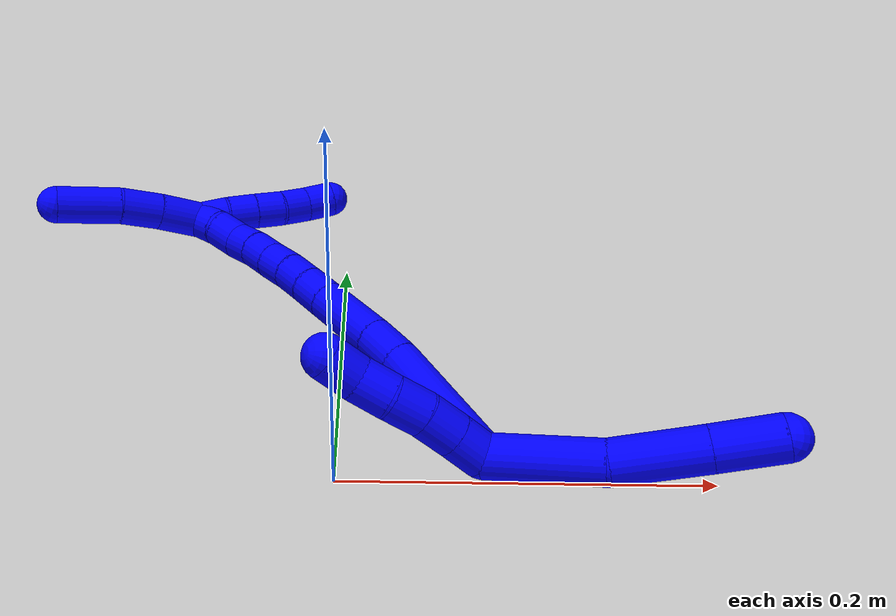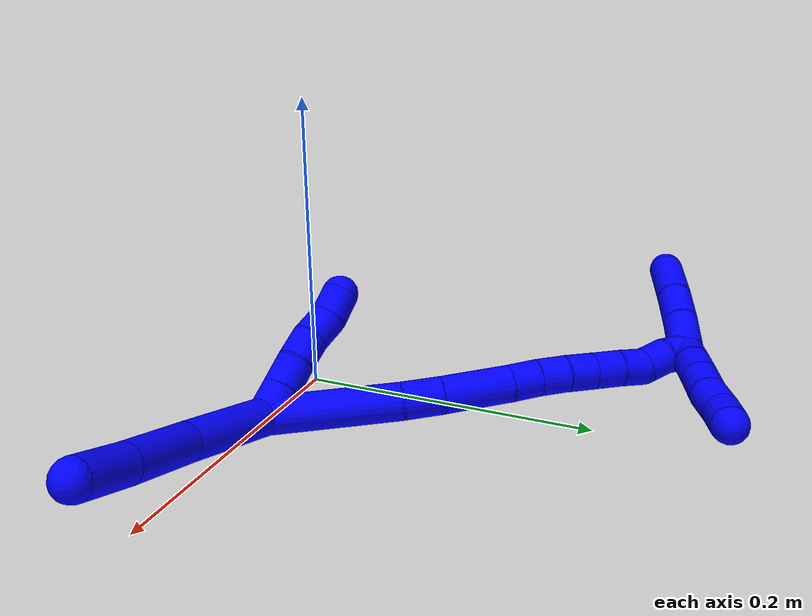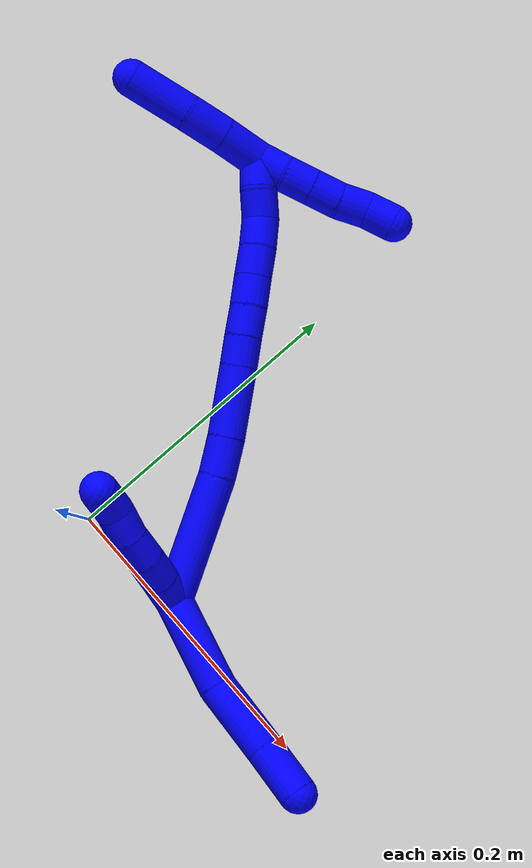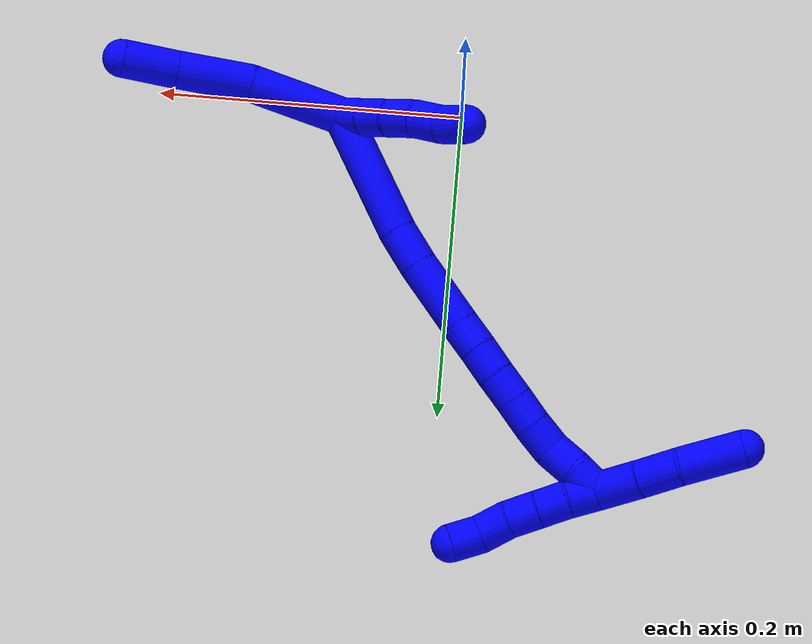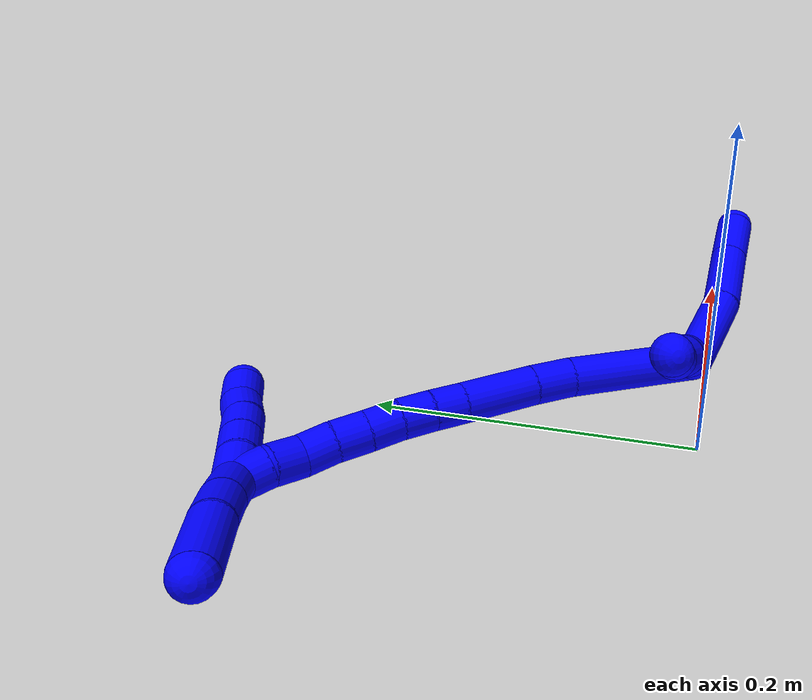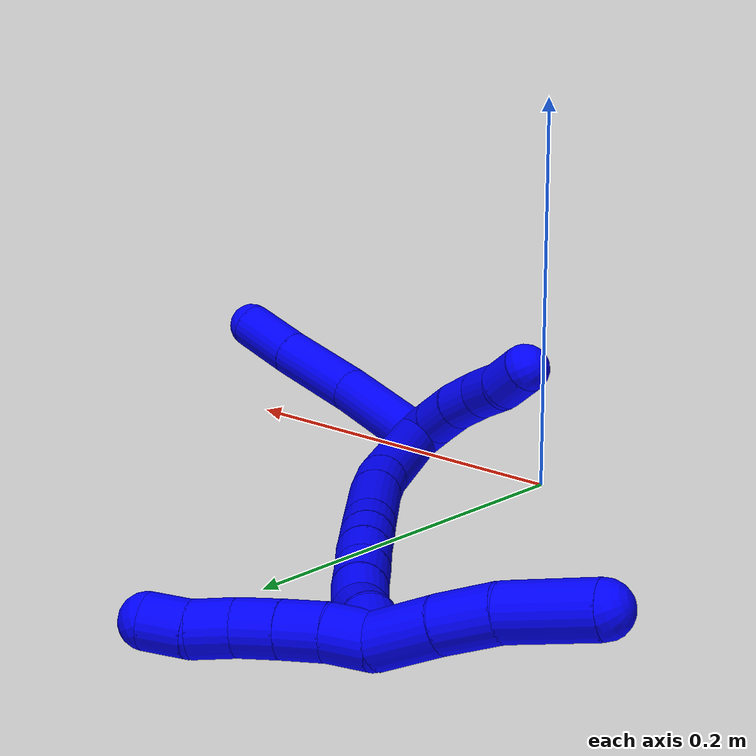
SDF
<sdf version="1.7">
 <world name="default">
  <model name="1">
   <static>0</static>
   <link name="1">
    <collision name="collision-cylinder-e_1_2_8">
     <pose>0.023801 -0.006386 0.020364 0.30388 0.839811 0.136511</pose>
     <geometry><cylinder><radius>0.0125</radius><length>0.063937</length></cylinder></geometry>
     <surface>
      <friction><ode><mu>1.16</mu><mu2>1.16</mu2><slip1>0</slip1><slip2>0</slip2></ode></friction>
      <contact><ode><kp>1e+06</kp><kd>1</kd><max_vel>0</max_vel><min_depth>0.001</min_depth></ode></contact>
     </surface>
    </collision>
    <visual name="visual-cylinder-e_1_2_8">
     <pose>0.023801 -0.006386 0.020364 0.30388 0.839811 0.136511</pose>
     <geometry><cylinder><radius>0.0125</radius><length>0.063937</length></cylinder></geometry>
     <material><ambient>0 0 1 1</ambient></material>
    </visual>
    <collision name="collision-cylinder-e_2_8_9">
     <pose>0.063578 -0.02208 0.057552 0.50533 0.693317 0.185997</pose>
     <geometry><cylinder><radius>0.0125</radius><length>0.049994</length></cylinder></geometry>
     <surface>
      <friction><ode><mu>1.16</mu><mu2>1.16</mu2><slip1>0</slip1><slip2>0</slip2></ode></friction>
      <contact><ode><kp>1e+06</kp><kd>1</kd><max_vel>0</max_vel><min_depth>0.001</min_depth></ode></contact>
     </surface>
    </collision>
    <visual name="visual-cylinder-e_2_8_9">
     <pose>0.063578 -0.02208 0.057552 0.50533 0.693317 0.185997</pose>
     <geometry><cylinder><radius>0.0125</radius><length>0.049994</length></cylinder></geometry>
     <material><ambient>0 0 1 1</ambient></material>
    </visual>
    <collision name="collision-cylinder-e_3_9_6">
     <pose>0.091423 -0.038398 0.086003 0.542577 0.718388 0.208123</pose>
     <geometry><cylinder><radius>0.0125</radius><length>0.036068</length></cylinder></geometry>
     <surface>
      <friction><ode><mu>1.16</mu><mu2>1.16</mu2><slip1>0</slip1><slip2>0</slip2></ode></friction>
      <contact><ode><kp>1e+06</kp><kd>1</kd><max_vel>0</max_vel><min_depth>0.001</min_depth></ode></contact>
     </surface>
    </collision>
    <visual name="visual-cylinder-e_3_9_6">
     <pose>0.091423 -0.038398 0.086003 0.542577 0.718388 0.208123</pose>
     <geometry><cylinder><radius>0.0125</radius><length>0.036068</length></cylinder></geometry>
     <material><ambient>0 0 1 1</ambient></material>
    </visual>
    <collision name="collision-cylinder-e_1_2_10">
     <pose>-0.002635 -0.003989 -0.008783 2.71525 -0.266686 -1.10955</pose>
     <geometry><cylinder><radius>0.0125</radius><length>0.02</length></cylinder></geometry>
     <surface>
      <friction><ode><mu>1.16</mu><mu2>1.16</mu2><slip1>0</slip1><slip2>0</slip2></ode></friction>
      <contact><ode><kp>1e+06</kp><kd>1</kd><max_vel>0</max_vel><min_depth>0.001</min_depth></ode></contact>
     </surface>
    </collision>
    <visual name="visual-cylinder-e_1_2_10">
     <pose>-0.002635 -0.003989 -0.008783 2.71525 -0.266686 -1.10955</pose>
     <geometry><cylinder><radius>0.0125</radius><length>0.02</length></cylinder></geometry>
     <material><ambient>0 0 1 1</ambient></material>
    </visual>
    <collision name="collision-cylinder-e_2_10_11">
     <pose>-0.007853 -0.011727 -0.02647 2.74312 -0.261234 -1.15358</pose>
     <geometry><cylinder><radius>0.0125</radius><length>0.02</length></cylinder></geometry>
     <surface>
      <friction><ode><mu>1.16</mu><mu2>1.16</mu2><slip1>0</slip1><slip2>0</slip2></ode></friction>
      <contact><ode><kp>1e+06</kp><kd>1</kd><max_vel>0</max_vel><min_depth>0.001</min_depth></ode></contact>
     </surface>
    </collision>
    <visual name="visual-cylinder-e_2_10_11">
     <pose>-0.007853 -0.011727 -0.02647 2.74312 -0.261234 -1.15358</pose>
     <geometry><cylinder><radius>0.0125</radius><length>0.02</length></cylinder></geometry>
     <material><ambient>0 0 1 1</ambient></material>
    </visual>
    <collision name="collision-cylinder-e_3_11_12">
     <pose>-0.013587 -0.018106 -0.044492 2.86069 -0.32056 -1.70448</pose>
     <geometry><cylinder><radius>0.0125</radius><length>0.02</length></cylinder></geometry>
     <surface>
      <friction><ode><mu>1.16</mu><mu2>1.16</mu2><slip1>0</slip1><slip2>0</slip2></ode></friction>
      <contact><ode><kp>1e+06</kp><kd>1</kd><max_vel>0</max_vel><min_depth>0.001</min_depth></ode></contact>
     </surface>
    </collision>
    <visual name="visual-cylinder-e_3_11_12">
     <pose>-0.013587 -0.018106 -0.044492 2.86069 -0.32056 -1.70448</pose>
     <geometry><cylinder><radius>0.0125</radius><length>0.02</length></cylinder></geometry>
     <material><ambient>0 0 1 1</ambient></material>
    </visual>
    <collision name="collision-cylinder-e_4_12_13">
     <pose>-0.021366 -0.023612 -0.061997 2.81135 -0.481108 -1.94818</pose>
     <geometry><cylinder><radius>0.0125</radius><length>0.02</length></cylinder></geometry>
     <surface>
      <friction><ode><mu>1.16</mu><mu2>1.16</mu2><slip1>0</slip1><slip2>0</slip2></ode></friction>
      <contact><ode><kp>1e+06</kp><kd>1</kd><max_vel>0</max_vel><min_depth>0.001</min_depth></ode></contact>
     </surface>
    </collision>
    <visual name="visual-cylinder-e_4_12_13">
     <pose>-0.021366 -0.023612 -0.061997 2.81135 -0.481108 -1.94818</pose>
     <geometry><cylinder><radius>0.0125</radius><length>0.02</length></cylinder></geometry>
     <material><ambient>0 0 1 1</ambient></material>
    </visual>
    <collision name="collision-cylinder-e_5_13_5">
     <pose>-0.028295 -0.030203 -0.079377 2.74977 -0.232233 -1.06272</pose>
     <geometry><cylinder><radius>0.0125</radius><length>0.02</length></cylinder></geometry>
     <surface>
      <friction><ode><mu>1.16</mu><mu2>1.16</mu2><slip1>0</slip1><slip2>0</slip2></ode></friction>
      <contact><ode><kp>1e+06</kp><kd>1</kd><max_vel>0</max_vel><min_depth>0.001</min_depth></ode></contact>
     </surface>
    </collision>
    <visual name="visual-cylinder-e_5_13_5">
     <pose>-0.028295 -0.030203 -0.079377 2.74977 -0.232233 -1.06272</pose>
     <geometry><cylinder><radius>0.0125</radius><length>0.02</length></cylinder></geometry>
     <material><ambient>0 0 1 1</ambient></material>
    </visual>
    <collision name="collision-cylinder-e_1_2_14">
     <pose>-0.038618 -0.018048 -0.005686 1.87601 -1.1152 -1.40933</pose>
     <geometry><cylinder><radius>0.0125</radius><length>0.086009</length></cylinder></geometry>
     <surface>
      <friction><ode><mu>1.16</mu><mu2>1.16</mu2><slip1>0</slip1><slip2>0</slip2></ode></friction>
      <contact><ode><kp>1e+06</kp><kd>1</kd><max_vel>0</max_vel><min_depth>0.001</min_depth></ode></contact>
     </surface>
    </collision>
    <visual name="visual-cylinder-e_1_2_14">
     <pose>-0.038618 -0.018048 -0.005686 1.87601 -1.1152 -1.40933</pose>
     <geometry><cylinder><radius>0.0125</radius><length>0.086009</length></cylinder></geometry>
     <material><ambient>0 0 1 1</ambient></material>
    </visual>
    <collision name="collision-cylinder-e_2_14_15">
     <pose>-0.089147 -0.040836 -0.014234 2.11395 -1.13556 -1.69284</pose>
     <geometry><cylinder><radius>0.0125</radius><length>0.02627</length></cylinder></geometry>
     <surface>
      <friction><ode><mu>1.16</mu><mu2>1.16</mu2><slip1>0</slip1><slip2>0</slip2></ode></friction>
      <contact><ode><kp>1e+06</kp><kd>1</kd><max_vel>0</max_vel><min_depth>0.001</min_depth></ode></contact>
     </surface>
    </collision>
    <visual name="visual-cylinder-e_2_14_15">
     <pose>-0.089147 -0.040836 -0.014234 2.11395 -1.13556 -1.69284</pose>
     <geometry><cylinder><radius>0.0125</radius><length>0.02627</length></cylinder></geometry>
     <material><ambient>0 0 1 1</ambient></material>
    </visual>
    <collision name="collision-cylinder-e_3_15_16">
     <pose>-0.122522 -0.053337 -0.023464 2.25798 -1.13335 -1.86312</pose>
     <geometry><cylinder><radius>0.0125</radius><length>0.047392</length></cylinder></geometry>
     <surface>
      <friction><ode><mu>1.16</mu><mu2>1.16</mu2><slip1>0</slip1><slip2>0</slip2></ode></friction>
      <contact><ode><kp>1e+06</kp><kd>1</kd><max_vel>0</max_vel><min_depth>0.001</min_depth></ode></contact>
     </surface>
    </collision>
    <visual name="visual-cylinder-e_3_15_16">
     <pose>-0.122522 -0.053337 -0.023464 2.25798 -1.13335 -1.86312</pose>
     <geometry><cylinder><radius>0.0125</radius><length>0.047392</length></cylinder></geometry>
     <material><ambient>0 0 1 1</ambient></material>
    </visual>
    <collision name="collision-cylinder-e_4_16_17">
     <pose>-0.152964 -0.064525 -0.032781 2.2812 -1.1042 -1.86113</pose>
     <geometry><cylinder><radius>0.0125</radius><length>0.020104</length></cylinder></geometry>
     <surface>
      <friction><ode><mu>1.16</mu><mu2>1.16</mu2><slip1>0</slip1><slip2>0</slip2></ode></friction>
      <contact><ode><kp>1e+06</kp><kd>1</kd><max_vel>0</max_vel><min_depth>0.001</min_depth></ode></contact>
     </surface>
    </collision>
    <visual name="visual-cylinder-e_4_16_17">
     <pose>-0.152964 -0.064525 -0.032781 2.2812 -1.1042 -1.86113</pose>
     <geometry><cylinder><radius>0.0125</radius><length>0.020104</length></cylinder></geometry>
     <material><ambient>0 0 1 1</ambient></material>
    </visual>
    <collision name="collision-cylinder-e_5_17_18">
     <pose>-0.171152 -0.071079 -0.038273 2.2537 -1.15836 -1.88405</pose>
     <geometry><cylinder><radius>0.0125</radius><length>0.020106</length></cylinder></geometry>
     <surface>
      <friction><ode><mu>1.16</mu><mu2>1.16</mu2><slip1>0</slip1><slip2>0</slip2></ode></friction>
      <contact><ode><kp>1e+06</kp><kd>1</kd><max_vel>0</max_vel><min_depth>0.001</min_depth></ode></contact>
     </surface>
    </collision>
    <visual name="visual-cylinder-e_5_17_18">
     <pose>-0.171152 -0.071079 -0.038273 2.2537 -1.15836 -1.88405</pose>
     <geometry><cylinder><radius>0.0125</radius><length>0.020106</length></cylinder></geometry>
     <material><ambient>0 0 1 1</ambient></material>
    </visual>
    <collision name="collision-cylinder-e_6_18_19">
     <pose>-0.189749 -0.07659 -0.043362 2.38886 -1.215 -2.10776</pose>
     <geometry><cylinder><radius>0.0125</radius><length>0.020029</length></cylinder></geometry>
     <surface>
      <friction><ode><mu>1.16</mu><mu2>1.16</mu2><slip1>0</slip1><slip2>0</slip2></ode></friction>
      <contact><ode><kp>1e+06</kp><kd>1</kd><max_vel>0</max_vel><min_depth>0.001</min_depth></ode></contact>
     </surface>
    </collision>
    <visual name="visual-cylinder-e_6_18_19">
     <pose>-0.189749 -0.07659 -0.043362 2.38886 -1.215 -2.10776</pose>
     <geometry><cylinder><radius>0.0125</radius><length>0.020029</length></cylinder></geometry>
     <material><ambient>0 0 1 1</ambient></material>
    </visual>
    <collision name="collision-cylinder-e_7_19_20">
     <pose>-0.208478 -0.081648 -0.048345 2.31002 -1.20141 -1.99674</pose>
     <geometry><cylinder><radius>0.0125</radius><length>0.020036</length></cylinder></geometry>
     <surface>
      <friction><ode><mu>1.16</mu><mu2>1.16</mu2><slip1>0</slip1><slip2>0</slip2></ode></friction>
      <contact><ode><kp>1e+06</kp><kd>1</kd><max_vel>0</max_vel><min_depth>0.001</min_depth></ode></contact>
     </surface>
    </collision>
    <visual name="visual-cylinder-e_7_19_20">
     <pose>-0.208478 -0.081648 -0.048345 2.31002 -1.20141 -1.99674</pose>
     <geometry><cylinder><radius>0.0125</radius><length>0.020036</length></cylinder></geometry>
     <material><ambient>0 0 1 1</ambient></material>
    </visual>
    <collision name="collision-cylinder-e_8_20_21">
     <pose>-0.227315 -0.086033 -0.053457 2.5724 -1.24792 -2.36965</pose>
     <geometry><cylinder><radius>0.0125</radius><length>0.020024</length></cylinder></geometry>
     <surface>
      <friction><ode><mu>1.16</mu><mu2>1.16</mu2><slip1>0</slip1><slip2>0</slip2></ode></friction>
      <contact><ode><kp>1e+06</kp><kd>1</kd><max_vel>0</max_vel><min_depth>0.001</min_depth></ode></contact>
     </surface>
    </collision>
    <visual name="visual-cylinder-e_8_20_21">
     <pose>-0.227315 -0.086033 -0.053457 2.5724 -1.24792 -2.36965</pose>
     <geometry><cylinder><radius>0.0125</radius><length>0.020024</length></cylinder></geometry>
     <material><ambient>0 0 1 1</ambient></material>
    </visual>
    <collision name="collision-cylinder-e_9_21_22">
     <pose>-0.244801 -0.090829 -0.061322 2.60524 -0.9238 -2.13283</pose>
     <geometry><cylinder><radius>0.0125</radius><length>0.020029</length></cylinder></geometry>
     <surface>
      <friction><ode><mu>1.16</mu><mu2>1.16</mu2><slip1>0</slip1><slip2>0</slip2></ode></friction>
      <contact><ode><kp>1e+06</kp><kd>1</kd><max_vel>0</max_vel><min_depth>0.001</min_depth></ode></contact>
     </surface>
    </collision>
    <visual name="visual-cylinder-e_9_21_22">
     <pose>-0.244801 -0.090829 -0.061322 2.60524 -0.9238 -2.13283</pose>
     <geometry><cylinder><radius>0.0125</radius><length>0.020029</length></cylinder></geometry>
     <material><ambient>0 0 1 1</ambient></material>
    </visual>
    <collision name="collision-cylinder-e_10_22_1">
     <pose>-0.261918 -0.095523 -0.070269 2.73703 -1.14968 -2.52839</pose>
     <geometry><cylinder><radius>0.0125</radius><length>0.020001</length></cylinder></geometry>
     <surface>
      <friction><ode><mu>1.16</mu><mu2>1.16</mu2><slip1>0</slip1><slip2>0</slip2></ode></friction>
      <contact><ode><kp>1e+06</kp><kd>1</kd><max_vel>0</max_vel><min_depth>0.001</min_depth></ode></contact>
     </surface>
    </collision>
    <visual name="visual-cylinder-e_10_22_1">
     <pose>-0.261918 -0.095523 -0.070269 2.73703 -1.14968 -2.52839</pose>
     <geometry><cylinder><radius>0.0125</radius><length>0.020001</length></cylinder></geometry>
     <material><ambient>0 0 1 1</ambient></material>
    </visual>
    <collision name="collision-cylinder-e_1_1_23">
     <pose>-0.27237 -0.096629 -0.089227 -3.10849 -0.086951 2.41434</pose>
     <geometry><cylinder><radius>0.0125</radius><length>0.030531</length></cylinder></geometry>
     <surface>
      <friction><ode><mu>1.16</mu><mu2>1.16</mu2><slip1>0</slip1><slip2>0</slip2></ode></friction>
      <contact><ode><kp>1e+06</kp><kd>1</kd><max_vel>0</max_vel><min_depth>0.001</min_depth></ode></contact>
     </surface>
    </collision>
    <visual name="visual-cylinder-e_1_1_23">
     <pose>-0.27237 -0.096629 -0.089227 -3.10849 -0.086951 2.41434</pose>
     <geometry><cylinder><radius>0.0125</radius><length>0.030531</length></cylinder></geometry>
     <material><ambient>0 0 1 1</ambient></material>
    </visual>
    <collision name="collision-cylinder-e_2_23_24">
     <pose>-0.274937 -0.09482 -0.117916 -3.0451 -0.091298 1.51543</pose>
     <geometry><cylinder><radius>0.0125</radius><length>0.02722</length></cylinder></geometry>
     <surface>
      <friction><ode><mu>1.16</mu><mu2>1.16</mu2><slip1>0</slip1><slip2>0</slip2></ode></friction>
      <contact><ode><kp>1e+06</kp><kd>1</kd><max_vel>0</max_vel><min_depth>0.001</min_depth></ode></contact>
     </surface>
    </collision>
    <visual name="visual-cylinder-e_2_23_24">
     <pose>-0.274937 -0.09482 -0.117916 -3.0451 -0.091298 1.51543</pose>
     <geometry><cylinder><radius>0.0125</radius><length>0.02722</length></cylinder></geometry>
     <material><ambient>0 0 1 1</ambient></material>
    </visual>
    <collision name="collision-cylinder-e_3_24_4">
     <pose>-0.279889 -0.088822 -0.151666 -2.91403 -0.176636 1.31845</pose>
     <geometry><cylinder><radius>0.0125</radius><length>0.042249</length></cylinder></geometry>
     <surface>
      <friction><ode><mu>1.16</mu><mu2>1.16</mu2><slip1>0</slip1><slip2>0</slip2></ode></friction>
      <contact><ode><kp>1e+06</kp><kd>1</kd><max_vel>0</max_vel><min_depth>0.001</min_depth></ode></contact>
     </surface>
    </collision>
    <visual name="visual-cylinder-e_3_24_4">
     <pose>-0.279889 -0.088822 -0.151666 -2.91403 -0.176636 1.31845</pose>
     <geometry><cylinder><radius>0.0125</radius><length>0.042249</length></cylinder></geometry>
     <material><ambient>0 0 1 1</ambient></material>
    </visual>
    <collision name="collision-cylinder-e_1_1_25">
     <pose>-0.268533 -0.101363 -0.065321 0.452357 0.25387 0.058719</pose>
     <geometry><cylinder><radius>0.0125</radius><length>0.02</length></cylinder></geometry>
     <surface>
      <friction><ode><mu>1.16</mu><mu2>1.16</mu2><slip1>0</slip1><slip2>0</slip2></ode></friction>
      <contact><ode><kp>1e+06</kp><kd>1</kd><max_vel>0</max_vel><min_depth>0.001</min_depth></ode></contact>
     </surface>
    </collision>
    <visual name="visual-cylinder-e_1_1_25">
     <pose>-0.268533 -0.101363 -0.065321 0.452357 0.25387 0.058719</pose>
     <geometry><cylinder><radius>0.0125</radius><length>0.02</length></cylinder></geometry>
     <material><ambient>0 0 1 1</ambient></material>
    </visual>
    <collision name="collision-cylinder-e_2_25_26">
     <pose>-0.264412 -0.109092 -0.047386 0.362326 0.161601 0.029663</pose>
     <geometry><cylinder><radius>0.0125</radius><length>0.02</length></cylinder></geometry>
     <surface>
      <friction><ode><mu>1.16</mu><mu2>1.16</mu2><slip1>0</slip1><slip2>0</slip2></ode></friction>
      <contact><ode><kp>1e+06</kp><kd>1</kd><max_vel>0</max_vel><min_depth>0.001</min_depth></ode></contact>
     </surface>
    </collision>
    <visual name="visual-cylinder-e_2_25_26">
     <pose>-0.264412 -0.109092 -0.047386 0.362326 0.161601 0.029663</pose>
     <geometry><cylinder><radius>0.0125</radius><length>0.02</length></cylinder></geometry>
     <material><ambient>0 0 1 1</ambient></material>
    </visual>
    <collision name="collision-cylinder-e_3_26_27">
     <pose>-0.26127 -0.115891 -0.028843 0.340573 0.153913 0.026516</pose>
     <geometry><cylinder><radius>0.0125</radius><length>0.02</length></cylinder></geometry>
     <surface>
      <friction><ode><mu>1.16</mu><mu2>1.16</mu2><slip1>0</slip1><slip2>0</slip2></ode></friction>
      <contact><ode><kp>1e+06</kp><kd>1</kd><max_vel>0</max_vel><min_depth>0.001</min_depth></ode></contact>
     </surface>
    </collision>
    <visual name="visual-cylinder-e_3_26_27">
     <pose>-0.26127 -0.115891 -0.028843 0.340573 0.153913 0.026516</pose>
     <geometry><cylinder><radius>0.0125</radius><length>0.02</length></cylinder></geometry>
     <material><ambient>0 0 1 1</ambient></material>
    </visual>
    <collision name="collision-cylinder-e_4_27_28">
     <pose>-0.259702 -0.122932 -0.010255 0.383304 0.00353 0.000685</pose>
     <geometry><cylinder><radius>0.0125</radius><length>0.02</length></cylinder></geometry>
     <surface>
      <friction><ode><mu>1.16</mu><mu2>1.16</mu2><slip1>0</slip1><slip2>0</slip2></ode></friction>
      <contact><ode><kp>1e+06</kp><kd>1</kd><max_vel>0</max_vel><min_depth>0.001</min_depth></ode></contact>
     </surface>
    </collision>
    <visual name="visual-cylinder-e_4_27_28">
     <pose>-0.259702 -0.122932 -0.010255 0.383304 0.00353 0.000685</pose>
     <geometry><cylinder><radius>0.0125</radius><length>0.02</length></cylinder></geometry>
     <material><ambient>0 0 1 1</ambient></material>
    </visual>
    <collision name="collision-cylinder-e_5_28_3">
     <pose>-0.257392 -0.130982 0.007752 0.458543 0.229497 0.053782</pose>
     <geometry><cylinder><radius>0.0125</radius><length>0.02</length></cylinder></geometry>
     <surface>
      <friction><ode><mu>1.16</mu><mu2>1.16</mu2><slip1>0</slip1><slip2>0</slip2></ode></friction>
      <contact><ode><kp>1e+06</kp><kd>1</kd><max_vel>0</max_vel><min_depth>0.001</min_depth></ode></contact>
     </surface>
    </collision>
    <visual name="visual-cylinder-e_5_28_3">
     <pose>-0.257392 -0.130982 0.007752 0.458543 0.229497 0.053782</pose>
     <geometry><cylinder><radius>0.0125</radius><length>0.02</length></cylinder></geometry>
     <material><ambient>0 0 1 1</ambient></material>
    </visual>
    <collision name="collision-sphere-3">
     <pose>-0.255117 -0.135293 0.016484 0 -0 0</pose>
     <geometry><sphere><radius>0.0125</radius></sphere></geometry>
     <surface>
      <friction><ode><mu>1.16</mu><mu2>1.16</mu2><slip1>0</slip1><slip2>0</slip2></ode></friction>
      <contact><ode><kp>1e+06</kp><kd>1</kd><max_vel>0</max_vel><min_depth>0.001</min_depth></ode></contact>
     </surface>
    </collision>
    <visual name="visual-sphere-3">
     <pose>-0.255117 -0.135293 0.016484 0 -0 0</pose>
     <geometry><sphere><radius>0.0125</radius></sphere></geometry>
     <material><ambient>0 0 1 1</ambient></material>
    </visual>
    <collision name="collision-sphere-28">
     <pose>-0.259667 -0.126672 -0.00098 0 -0 0</pose>
     <geometry><sphere><radius>0.0125</radius></sphere></geometry>
     <surface>
      <friction><ode><mu>1.16</mu><mu2>1.16</mu2><slip1>0</slip1><slip2>0</slip2></ode></friction>
      <contact><ode><kp>1e+06</kp><kd>1</kd><max_vel>0</max_vel><min_depth>0.001</min_depth></ode></contact>
     </surface>
    </collision>
    <visual name="visual-sphere-28">
     <pose>-0.259667 -0.126672 -0.00098 0 -0 0</pose>
     <geometry><sphere><radius>0.0125</radius></sphere></geometry>
     <material><ambient>0 0 1 1</ambient></material>
    </visual>
    <collision name="collision-sphere-27">
     <pose>-0.259737 -0.119192 -0.019529 0 -0 0</pose>
     <geometry><sphere><radius>0.0125</radius></sphere></geometry>
     <surface>
      <friction><ode><mu>1.16</mu><mu2>1.16</mu2><slip1>0</slip1><slip2>0</slip2></ode></friction>
      <contact><ode><kp>1e+06</kp><kd>1</kd><max_vel>0</max_vel><min_depth>0.001</min_depth></ode></contact>
     </surface>
    </collision>
    <visual name="visual-sphere-27">
     <pose>-0.259737 -0.119192 -0.019529 0 -0 0</pose>
     <geometry><sphere><radius>0.0125</radius></sphere></geometry>
     <material><ambient>0 0 1 1</ambient></material>
    </visual>
    <collision name="collision-sphere-26">
     <pose>-0.262803 -0.112591 -0.038157 0 -0 0</pose>
     <geometry><sphere><radius>0.0125</radius></sphere></geometry>
     <surface>
      <friction><ode><mu>1.16</mu><mu2>1.16</mu2><slip1>0</slip1><slip2>0</slip2></ode></friction>
      <contact><ode><kp>1e+06</kp><kd>1</kd><max_vel>0</max_vel><min_depth>0.001</min_depth></ode></contact>
     </surface>
    </collision>
    <visual name="visual-sphere-26">
     <pose>-0.262803 -0.112591 -0.038157 0 -0 0</pose>
     <geometry><sphere><radius>0.0125</radius></sphere></geometry>
     <material><ambient>0 0 1 1</ambient></material>
    </visual>
    <collision name="collision-sphere-25">
     <pose>-0.266021 -0.105594 -0.056615 0 -0 0</pose>
     <geometry><sphere><radius>0.0125</radius></sphere></geometry>
     <surface>
      <friction><ode><mu>1.16</mu><mu2>1.16</mu2><slip1>0</slip1><slip2>0</slip2></ode></friction>
      <contact><ode><kp>1e+06</kp><kd>1</kd><max_vel>0</max_vel><min_depth>0.001</min_depth></ode></contact>
     </surface>
    </collision>
    <visual name="visual-sphere-25">
     <pose>-0.266021 -0.105594 -0.056615 0 -0 0</pose>
     <geometry><sphere><radius>0.0125</radius></sphere></geometry>
     <material><ambient>0 0 1 1</ambient></material>
    </visual>
    <collision name="collision-sphere-4">
     <pose>-0.283601 -0.084131 -0.171926 0 -0 0</pose>
     <geometry><sphere><radius>0.0125</radius></sphere></geometry>
     <surface>
      <friction><ode><mu>1.16</mu><mu2>1.16</mu2><slip1>0</slip1><slip2>0</slip2></ode></friction>
      <contact><ode><kp>1e+06</kp><kd>1</kd><max_vel>0</max_vel><min_depth>0.001</min_depth></ode></contact>
     </surface>
    </collision>
    <visual name="visual-sphere-4">
     <pose>-0.283601 -0.084131 -0.171926 0 -0 0</pose>
     <geometry><sphere><radius>0.0125</radius></sphere></geometry>
     <material><ambient>0 0 1 1</ambient></material>
    </visual>
    <collision name="collision-sphere-24">
     <pose>-0.276177 -0.093514 -0.131407 0 -0 0</pose>
     <geometry><sphere><radius>0.0125</radius></sphere></geometry>
     <surface>
      <friction><ode><mu>1.16</mu><mu2>1.16</mu2><slip1>0</slip1><slip2>0</slip2></ode></friction>
      <contact><ode><kp>1e+06</kp><kd>1</kd><max_vel>0</max_vel><min_depth>0.001</min_depth></ode></contact>
     </surface>
    </collision>
    <visual name="visual-sphere-24">
     <pose>-0.276177 -0.093514 -0.131407 0 -0 0</pose>
     <geometry><sphere><radius>0.0125</radius></sphere></geometry>
     <material><ambient>0 0 1 1</ambient></material>
    </visual>
    <collision name="collision-sphere-23">
     <pose>-0.273696 -0.096126 -0.104426 0 -0 0</pose>
     <geometry><sphere><radius>0.0125</radius></sphere></geometry>
     <surface>
      <friction><ode><mu>1.16</mu><mu2>1.16</mu2><slip1>0</slip1><slip2>0</slip2></ode></friction>
      <contact><ode><kp>1e+06</kp><kd>1</kd><max_vel>0</max_vel><min_depth>0.001</min_depth></ode></contact>
     </surface>
    </collision>
    <visual name="visual-sphere-23">
     <pose>-0.273696 -0.096126 -0.104426 0 -0 0</pose>
     <geometry><sphere><radius>0.0125</radius></sphere></geometry>
     <material><ambient>0 0 1 1</ambient></material>
    </visual>
    <collision name="collision-sphere-1">
     <pose>-0.271044 -0.097132 -0.074027 0 -0 0</pose>
     <geometry><sphere><radius>0.0125</radius></sphere></geometry>
     <surface>
      <friction><ode><mu>1.16</mu><mu2>1.16</mu2><slip1>0</slip1><slip2>0</slip2></ode></friction>
      <contact><ode><kp>1e+06</kp><kd>1</kd><max_vel>0</max_vel><min_depth>0.001</min_depth></ode></contact>
     </surface>
    </collision>
    <visual name="visual-sphere-1">
     <pose>-0.271044 -0.097132 -0.074027 0 -0 0</pose>
     <geometry><sphere><radius>0.0125</radius></sphere></geometry>
     <material><ambient>0 0 1 1</ambient></material>
    </visual>
    <collision name="collision-sphere-22">
     <pose>-0.252791 -0.093914 -0.066511 0 -0 0</pose>
     <geometry><sphere><radius>0.0125</radius></sphere></geometry>
     <surface>
      <friction><ode><mu>1.16</mu><mu2>1.16</mu2><slip1>0</slip1><slip2>0</slip2></ode></friction>
      <contact><ode><kp>1e+06</kp><kd>1</kd><max_vel>0</max_vel><min_depth>0.001</min_depth></ode></contact>
     </surface>
    </collision>
    <visual name="visual-sphere-22">
     <pose>-0.252791 -0.093914 -0.066511 0 -0 0</pose>
     <geometry><sphere><radius>0.0125</radius></sphere></geometry>
     <material><ambient>0 0 1 1</ambient></material>
    </visual>
    <collision name="collision-sphere-21">
     <pose>-0.23681 -0.087745 -0.056133 0 -0 0</pose>
     <geometry><sphere><radius>0.0125</radius></sphere></geometry>
     <surface>
      <friction><ode><mu>1.16</mu><mu2>1.16</mu2><slip1>0</slip1><slip2>0</slip2></ode></friction>
      <contact><ode><kp>1e+06</kp><kd>1</kd><max_vel>0</max_vel><min_depth>0.001</min_depth></ode></contact>
     </surface>
    </collision>
    <visual name="visual-sphere-21">
     <pose>-0.23681 -0.087745 -0.056133 0 -0 0</pose>
     <geometry><sphere><radius>0.0125</radius></sphere></geometry>
     <material><ambient>0 0 1 1</ambient></material>
    </visual>
    <collision name="collision-sphere-11">
     <pose>-0.010436 -0.015475 -0.035374 0 -0 0</pose>
     <geometry><sphere><radius>0.0125</radius></sphere></geometry>
     <surface>
      <friction><ode><mu>1.16</mu><mu2>1.16</mu2><slip1>0</slip1><slip2>0</slip2></ode></friction>
      <contact><ode><kp>1e+06</kp><kd>1</kd><max_vel>0</max_vel><min_depth>0.001</min_depth></ode></contact>
     </surface>
    </collision>
    <visual name="visual-sphere-11">
     <pose>-0.010436 -0.015475 -0.035374 0 -0 0</pose>
     <geometry><sphere><radius>0.0125</radius></sphere></geometry>
     <material><ambient>0 0 1 1</ambient></material>
    </visual>
    <collision name="collision-sphere-10">
     <pose>-0.005271 -0.007979 -0.017566 0 -0 0</pose>
     <geometry><sphere><radius>0.0125</radius></sphere></geometry>
     <surface>
      <friction><ode><mu>1.16</mu><mu2>1.16</mu2><slip1>0</slip1><slip2>0</slip2></ode></friction>
      <contact><ode><kp>1e+06</kp><kd>1</kd><max_vel>0</max_vel><min_depth>0.001</min_depth></ode></contact>
     </surface>
    </collision>
    <visual name="visual-sphere-10">
     <pose>-0.005271 -0.007979 -0.017566 0 -0 0</pose>
     <geometry><sphere><radius>0.0125</radius></sphere></geometry>
     <material><ambient>0 0 1 1</ambient></material>
    </visual>
    <collision name="collision-sphere-6">
     <pose>0.103293 -0.045408 0.09763 0 -0 0</pose>
     <geometry><sphere><radius>0.0125</radius></sphere></geometry>
     <surface>
      <friction><ode><mu>1.16</mu><mu2>1.16</mu2><slip1>0</slip1><slip2>0</slip2></ode></friction>
      <contact><ode><kp>1e+06</kp><kd>1</kd><max_vel>0</max_vel><min_depth>0.001</min_depth></ode></contact>
     </surface>
    </collision>
    <visual name="visual-sphere-6">
     <pose>0.103293 -0.045408 0.09763 0 -0 0</pose>
     <geometry><sphere><radius>0.0125</radius></sphere></geometry>
     <material><ambient>0 0 1 1</ambient></material>
    </visual>
    <collision name="collision-sphere-9">
     <pose>0.079553 -0.031387 0.074375 0 -0 0</pose>
     <geometry><sphere><radius>0.0125</radius></sphere></geometry>
     <surface>
      <friction><ode><mu>1.16</mu><mu2>1.16</mu2><slip1>0</slip1><slip2>0</slip2></ode></friction>
      <contact><ode><kp>1e+06</kp><kd>1</kd><max_vel>0</max_vel><min_depth>0.001</min_depth></ode></contact>
     </surface>
    </collision>
    <visual name="visual-sphere-9">
     <pose>0.079553 -0.031387 0.074375 0 -0 0</pose>
     <geometry><sphere><radius>0.0125</radius></sphere></geometry>
     <material><ambient>0 0 1 1</ambient></material>
    </visual>
    <collision name="collision-sphere-2">
     <geometry><sphere><radius>0.0125</radius></sphere></geometry>
     <surface>
      <friction><ode><mu>1.16</mu><mu2>1.16</mu2><slip1>0</slip1><slip2>0</slip2></ode></friction>
      <contact><ode><kp>1e+06</kp><kd>1</kd><max_vel>0</max_vel><min_depth>0.001</min_depth></ode></contact>
     </surface>
    </collision>
    <visual name="visual-sphere-2">
     <geometry><sphere><radius>0.0125</radius></sphere></geometry>
     <material><ambient>0 0 1 1</ambient></material>
    </visual>
    <collision name="collision-sphere-19">
     <pose>-0.199136 -0.078975 -0.045908 0 -0 0</pose>
     <geometry><sphere><radius>0.0125</radius></sphere></geometry>
     <surface>
      <friction><ode><mu>1.16</mu><mu2>1.16</mu2><slip1>0</slip1><slip2>0</slip2></ode></friction>
      <contact><ode><kp>1e+06</kp><kd>1</kd><max_vel>0</max_vel><min_depth>0.001</min_depth></ode></contact>
     </surface>
    </collision>
    <visual name="visual-sphere-19">
     <pose>-0.199136 -0.078975 -0.045908 0 -0 0</pose>
     <geometry><sphere><radius>0.0125</radius></sphere></geometry>
     <material><ambient>0 0 1 1</ambient></material>
    </visual>
    <collision name="collision-sphere-8">
     <pose>0.047602 -0.012772 0.040729 0 -0 0</pose>
     <geometry><sphere><radius>0.0125</radius></sphere></geometry>
     <surface>
      <friction><ode><mu>1.16</mu><mu2>1.16</mu2><slip1>0</slip1><slip2>0</slip2></ode></friction>
      <contact><ode><kp>1e+06</kp><kd>1</kd><max_vel>0</max_vel><min_depth>0.001</min_depth></ode></contact>
     </surface>
    </collision>
    <visual name="visual-sphere-8">
     <pose>0.047602 -0.012772 0.040729 0 -0 0</pose>
     <geometry><sphere><radius>0.0125</radius></sphere></geometry>
     <material><ambient>0 0 1 1</ambient></material>
    </visual>
    <collision name="collision-sphere-12">
     <pose>-0.016738 -0.020737 -0.053611 0 -0 0</pose>
     <geometry><sphere><radius>0.0125</radius></sphere></geometry>
     <surface>
      <friction><ode><mu>1.16</mu><mu2>1.16</mu2><slip1>0</slip1><slip2>0</slip2></ode></friction>
      <contact><ode><kp>1e+06</kp><kd>1</kd><max_vel>0</max_vel><min_depth>0.001</min_depth></ode></contact>
     </surface>
    </collision>
    <visual name="visual-sphere-12">
     <pose>-0.016738 -0.020737 -0.053611 0 -0 0</pose>
     <geometry><sphere><radius>0.0125</radius></sphere></geometry>
     <material><ambient>0 0 1 1</ambient></material>
    </visual>
    <collision name="collision-sphere-13">
     <pose>-0.025993 -0.026487 -0.070383 0 -0 0</pose>
     <geometry><sphere><radius>0.0125</radius></sphere></geometry>
     <surface>
      <friction><ode><mu>1.16</mu><mu2>1.16</mu2><slip1>0</slip1><slip2>0</slip2></ode></friction>
      <contact><ode><kp>1e+06</kp><kd>1</kd><max_vel>0</max_vel><min_depth>0.001</min_depth></ode></contact>
     </surface>
    </collision>
    <visual name="visual-sphere-13">
     <pose>-0.025993 -0.026487 -0.070383 0 -0 0</pose>
     <geometry><sphere><radius>0.0125</radius></sphere></geometry>
     <material><ambient>0 0 1 1</ambient></material>
    </visual>
    <collision name="collision-sphere-5">
     <pose>-0.030596 -0.033919 -0.088371 0 -0 0</pose>
     <geometry><sphere><radius>0.0125</radius></sphere></geometry>
     <surface>
      <friction><ode><mu>1.16</mu><mu2>1.16</mu2><slip1>0</slip1><slip2>0</slip2></ode></friction>
      <contact><ode><kp>1e+06</kp><kd>1</kd><max_vel>0</max_vel><min_depth>0.001</min_depth></ode></contact>
     </surface>
    </collision>
    <visual name="visual-sphere-5">
     <pose>-0.030596 -0.033919 -0.088371 0 -0 0</pose>
     <geometry><sphere><radius>0.0125</radius></sphere></geometry>
     <material><ambient>0 0 1 1</ambient></material>
    </visual>
    <collision name="collision-sphere-14">
     <pose>-0.077236 -0.036095 -0.011372 0 -0 0</pose>
     <geometry><sphere><radius>0.0125</radius></sphere></geometry>
     <surface>
      <friction><ode><mu>1.16</mu><mu2>1.16</mu2><slip1>0</slip1><slip2>0</slip2></ode></friction>
      <contact><ode><kp>1e+06</kp><kd>1</kd><max_vel>0</max_vel><min_depth>0.001</min_depth></ode></contact>
     </surface>
    </collision>
    <visual name="visual-sphere-14">
     <pose>-0.077236 -0.036095 -0.011372 0 -0 0</pose>
     <geometry><sphere><radius>0.0125</radius></sphere></geometry>
     <material><ambient>0 0 1 1</ambient></material>
    </visual>
    <collision name="collision-sphere-15">
     <pose>-0.101058 -0.045577 -0.017097 0 -0 0</pose>
     <geometry><sphere><radius>0.0125</radius></sphere></geometry>
     <surface>
      <friction><ode><mu>1.16</mu><mu2>1.16</mu2><slip1>0</slip1><slip2>0</slip2></ode></friction>
      <contact><ode><kp>1e+06</kp><kd>1</kd><max_vel>0</max_vel><min_depth>0.001</min_depth></ode></contact>
     </surface>
    </collision>
    <visual name="visual-sphere-15">
     <pose>-0.101058 -0.045577 -0.017097 0 -0 0</pose>
     <geometry><sphere><radius>0.0125</radius></sphere></geometry>
     <material><ambient>0 0 1 1</ambient></material>
    </visual>
    <collision name="collision-sphere-16">
     <pose>-0.143987 -0.061097 -0.029832 0 -0 0</pose>
     <geometry><sphere><radius>0.0125</radius></sphere></geometry>
     <surface>
      <friction><ode><mu>1.16</mu><mu2>1.16</mu2><slip1>0</slip1><slip2>0</slip2></ode></friction>
      <contact><ode><kp>1e+06</kp><kd>1</kd><max_vel>0</max_vel><min_depth>0.001</min_depth></ode></contact>
     </surface>
    </collision>
    <visual name="visual-sphere-16">
     <pose>-0.143987 -0.061097 -0.029832 0 -0 0</pose>
     <geometry><sphere><radius>0.0125</radius></sphere></geometry>
     <material><ambient>0 0 1 1</ambient></material>
    </visual>
    <collision name="collision-sphere-17">
     <pose>-0.161942 -0.067953 -0.03573 0 -0 0</pose>
     <geometry><sphere><radius>0.0125</radius></sphere></geometry>
     <surface>
      <friction><ode><mu>1.16</mu><mu2>1.16</mu2><slip1>0</slip1><slip2>0</slip2></ode></friction>
      <contact><ode><kp>1e+06</kp><kd>1</kd><max_vel>0</max_vel><min_depth>0.001</min_depth></ode></contact>
     </surface>
    </collision>
    <visual name="visual-sphere-17">
     <pose>-0.161942 -0.067953 -0.03573 0 -0 0</pose>
     <geometry><sphere><radius>0.0125</radius></sphere></geometry>
     <material><ambient>0 0 1 1</ambient></material>
    </visual>
    <collision name="collision-sphere-18">
     <pose>-0.180362 -0.074205 -0.040816 0 -0 0</pose>
     <geometry><sphere><radius>0.0125</radius></sphere></geometry>
     <surface>
      <friction><ode><mu>1.16</mu><mu2>1.16</mu2><slip1>0</slip1><slip2>0</slip2></ode></friction>
      <contact><ode><kp>1e+06</kp><kd>1</kd><max_vel>0</max_vel><min_depth>0.001</min_depth></ode></contact>
     </surface>
    </collision>
    <visual name="visual-sphere-18">
     <pose>-0.180362 -0.074205 -0.040816 0 -0 0</pose>
     <geometry><sphere><radius>0.0125</radius></sphere></geometry>
     <material><ambient>0 0 1 1</ambient></material>
    </visual>
    <collision name="collision-sphere-20">
     <pose>-0.217821 -0.084321 -0.050781 0 -0 0</pose>
     <geometry><sphere><radius>0.0125</radius></sphere></geometry>
     <surface>
      <friction><ode><mu>1.16</mu><mu2>1.16</mu2><slip1>0</slip1><slip2>0</slip2></ode></friction>
      <contact><ode><kp>1e+06</kp><kd>1</kd><max_vel>0</max_vel><min_depth>0.001</min_depth></ode></contact>
     </surface>
    </collision>
    <visual name="visual-sphere-20">
     <pose>-0.217821 -0.084321 -0.050781 0 -0 0</pose>
     <geometry><sphere><radius>0.0125</radius></sphere></geometry>
     <material><ambient>0 0 1 1</ambient></material>
    </visual>
    <inertial>
     <pose>-0.117313 -0.056054 -0.028411 0 -0 0</pose>
     <mass>0.75</mass>
     <inertia><ixx>0</ixx><ixy>0</ixy><ixz>0</ixz><iyy>7.5e-05</iyy><iyz>0</iyz><izz>8.5e-05</izz></inertia>
    </inertial>
   </link>
   <pose>0.077871 0.008344 0.011463 -2.08372 -0.399767 -0.960246</pose>
  </model>
 </world>
</sdf>
